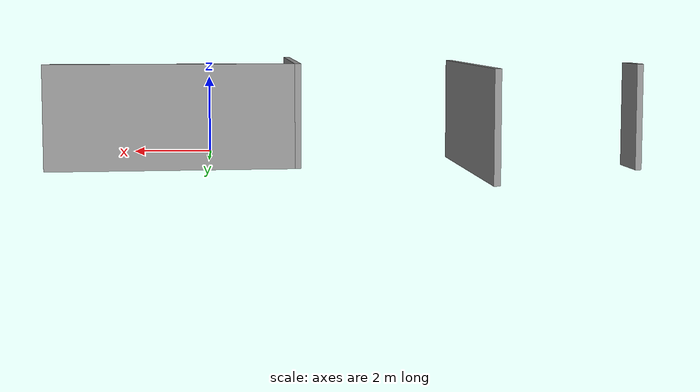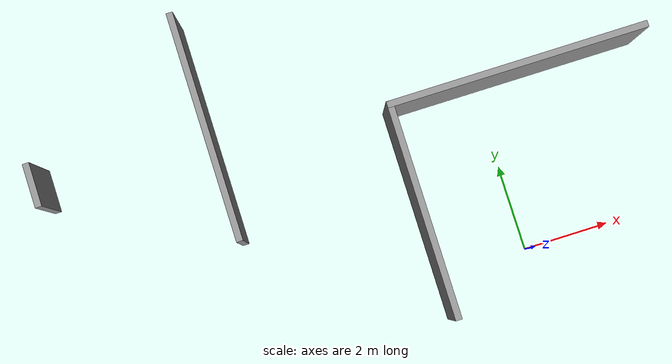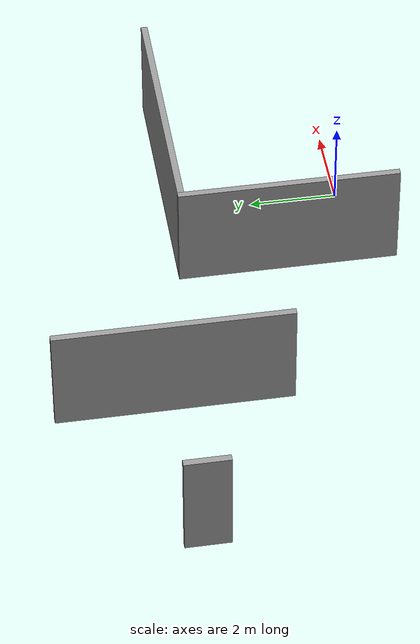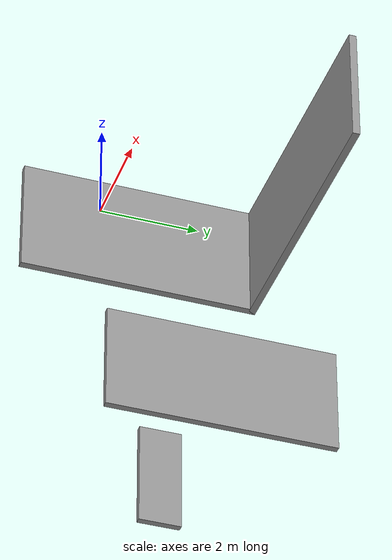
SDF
<?xml version='1.0'?>
<sdf version='1.7'>
  <model name='building_1'>
    <pose>-3.18777 3.1328 0 0 -0 0</pose>
    <link name='Wall_0'>
      <collision name='Wall_0_Collision'>
        <geometry>
          <box>
            <size>5 0.15 2.5</size>
          </box>
        </geometry>
        <pose>0 0 1.25 0 -0 0</pose>
      </collision>
      <visual name='Wall_0_Visual'>
        <pose>0 0 1.25 0 -0 0</pose>
        <geometry>
          <box>
            <size>5 0.15 2.5</size>
          </box>
        </geometry>
        <material>
          <script>
            <uri>file://media/materials/scripts/gazebo.material</uri>
            <name>Gazebo/Grey</name>
          </script>
          <ambient>1 1 1 1</ambient>
        </material>
        <meta>
          <layer>0</layer>
        </meta>
      </visual>
      <pose>1.05777 -1.64779 0 0 -0 1.5708</pose>
    </link>
    <link name='Wall_2'>
      <collision name='Wall_2_Collision'>
        <geometry>
          <box>
            <size>6 0.15 2.5</size>
          </box>
        </geometry>
        <pose>0 0 1.25 0 -0 0</pose>
      </collision>
      <visual name='Wall_2_Visual'>
        <pose>0 0 1.25 0 -0 0</pose>
        <geometry>
          <box>
            <size>6 0.15 2.5</size>
          </box>
        </geometry>
        <material>
          <script>
            <uri>file://media/materials/scripts/gazebo.material</uri>
            <name>Gazebo/Grey</name>
          </script>
          <ambient>1 1 1 1</ambient>
        </material>
        <meta>
          <layer>0</layer>
        </meta>
      </visual>
      <pose>3.98277 0.777205 0 0 -0 0</pose>
    </link>
    <link name='Wall_4'>
      <collision name='Wall_4_Collision'>
        <geometry>
          <box>
            <size>5.25 0.15 2.5</size>
          </box>
        </geometry>
        <pose>0 0 1.25 0 -0 0</pose>
      </collision>
      <visual name='Wall_4_Visual'>
        <pose>0 0 1.25 0 -0 0</pose>
        <geometry>
          <box>
            <size>5.25 0.15 2.5</size>
          </box>
        </geometry>
        <material>
          <script>
            <uri>file://media/materials/scripts/gazebo.material</uri>
            <name>Gazebo/Grey</name>
          </script>
          <ambient>1 1 1 1</ambient>
        </material>
        <meta>
          <layer>0</layer>
        </meta>
      </visual>
      <pose>-2.95921 1.52279 0 0 -0 -1.5708</pose>
    </link>
    <link name='Wall_6'>
      <collision name='Wall_6_Collision'>
        <geometry>
          <box>
            <size>1 0.15 2.5</size>
          </box>
        </geometry>
        <pose>0 0 1.25 0 -0 0</pose>
      </collision>
      <visual name='Wall_6_Visual'>
        <pose>0 0 1.25 0 -0 0</pose>
        <geometry>
          <box>
            <size>1 0.15 2.5</size>
          </box>
        </geometry>
        <material>
          <script>
            <uri>file://media/materials/scripts/gazebo.material</uri>
            <name>Gazebo/Grey</name>
          </script>
          <ambient>1 1 1 1</ambient>
        </material>
        <meta>
          <layer>0</layer>
        </meta>
      </visual>
      <pose>-6.90777 1.41839 0 0 -0 -1.5708</pose>
    </link>
    <static>1</static>
  </model>
</sdf>
